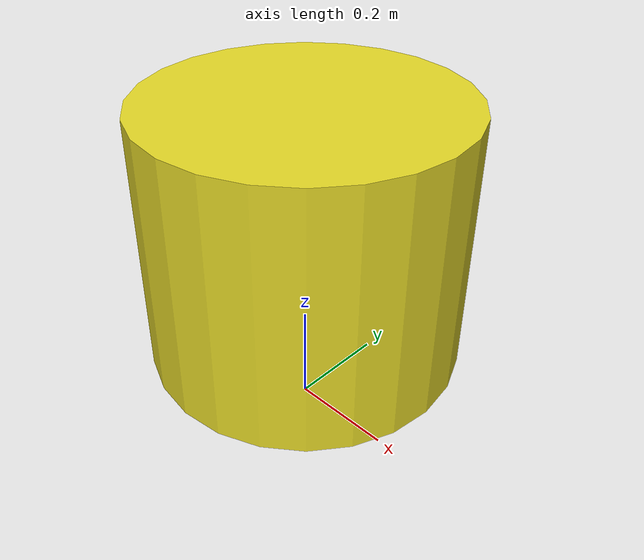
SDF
<?xml version='1.0'?>
<sdf version='1.5'>

    <model name='yellow_buoy'>
        <pose>0 0 0 0 0 0</pose>
        <link name='buoy_link'>
            <pose>0 0 0 0 0 0</pose>
            <inertial>
                <pose>0 0 0 0 0 0</pose>
                <mass>227</mass>
                <inertia>
                    <ixx>181.42</ixx>
                    <ixy>0</ixy>
                    <ixz>0</ixz>
                    <iyy>408.203</iyy>
                    <iyz>0</iyz>
                    <izz>495.037</izz>
                </inertia>
            </inertial>

            <visual name='body_visual'>
                <pose>0 0 0.4 0 0 0</pose>
                <geometry>
                    <cylinder>
                        <radius>0.3</radius>
                        <length>0.5</length>
                    </cylinder>
                </geometry>
                <material>
                    <script>
                        <uri>file://media/materials/scripts/gazebo.material</uri>
                        <name>Gazebo/Yellow</name>
                    </script>
                </material>
            </visual>

            <collision name='body_collision'>
                <pose>0 0 0.4 0 0 0</pose>
                <geometry>
                    <cylinder>
                        <radius>0.3</radius>
                        <length>0.5</length>
                    </cylinder>
                </geometry>
            </collision>
        </link>

        <plugin name='usv_dynamics_wamv_dynamics_plugin' filename='libgazebo_usv_dynamics_plugin.so'>
            <bodyName>buoy_link</bodyName>
            <waterLevel>0</waterLevel>
            <waterDensity>997.8</waterDensity>
            <xDotU>0.0</xDotU>
            <yDotV>0.0</yDotV>
            <nDotR>0.0</nDotR>
            <xU>51.3</xU>
            <xUU>72.4</xUU>
            <yV>102.6</yV>
            <yVV>0.0</yVV>
            <zW>500.0</zW>
            <kP>50.0</kP>
            <mQ>50.0</mQ>
            <nR>400.0</nR>
            <nRR>0.0</nRR>
            <hullRadius>0.213</hullRadius>
            <boatWidth>2.4</boatWidth>
            <boatLength>4.9</boatLength>
            <length_n>2</length_n>
            <wave_model>ocean_waves</wave_model>
        </plugin>

    </model>
</sdf>
